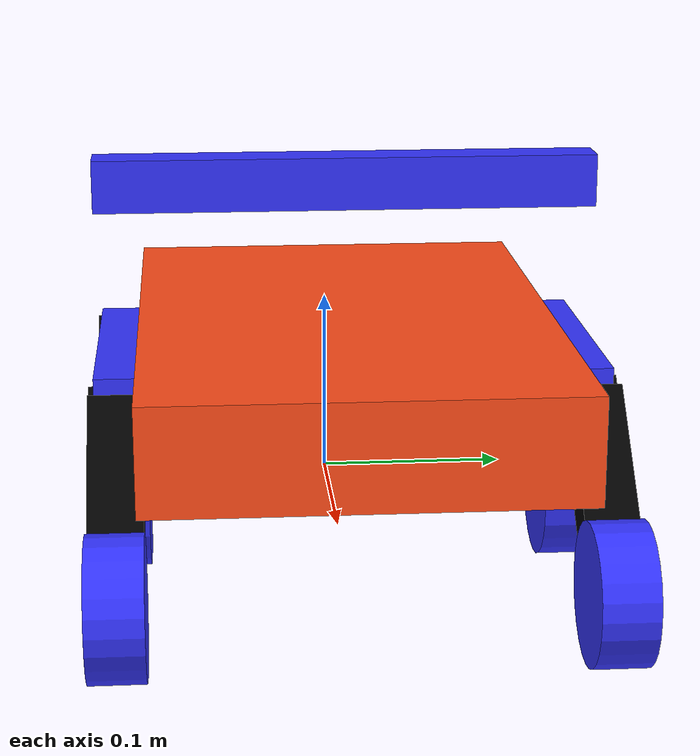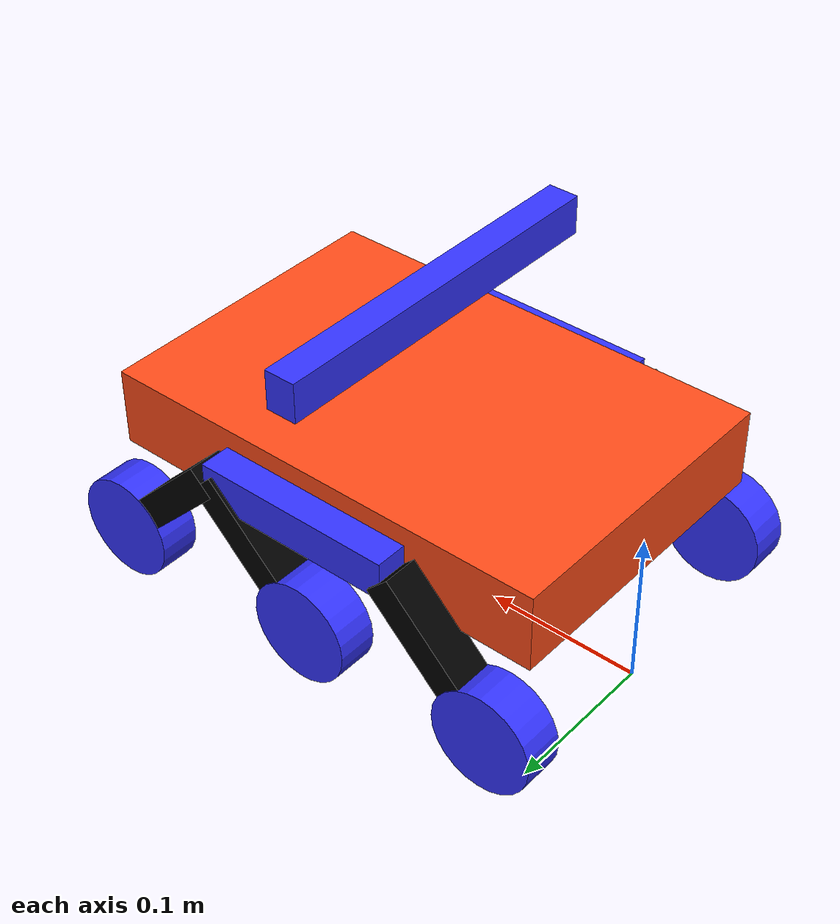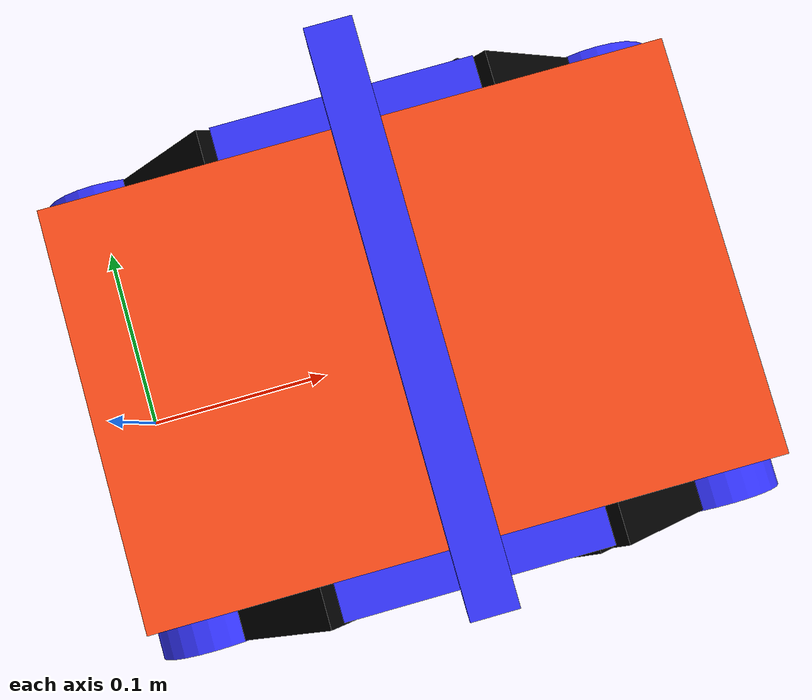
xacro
<?xml version="1.0"?>
<robot xmlns:xacro="http://www.ros.org/wiki/xacro" >

    <xacro:include filename="inertial_macros.xacro"/>

    <xacro:property name="chassis_length" value="0.3"/>
    <xacro:property name="chassis_width" value="0.2"/>
    <xacro:property name="chassis_height" value="0.05"/>
    <xacro:property name="chassis_mass" value="5.0"/>

    <xacro:property name="rocker_length" value="0.13"/>
    <xacro:property name="rocker_width" value="0.02"/>
    <xacro:property name="rocker_height" value="0.2"/>
     <xacro:property name="rocker_mass" value="0.2"/>

    <xacro:property name="tilted_length" value="0.1"/>
    <xacro:property name="tilted_mass" value="0.5"/>
    <xacro:property name="wheel_radius" value="0.033"/>
    <xacro:property name="wheel_thickness" value="0.026"/>
    <xacro:property name="wheel_mass" value="0.05"/>
    <xacro:property name="wheel_offset_x" value="0.226"/>
    <xacro:property name="wheel_offset_y" value="0.1485"/>
    <xacro:property name="wheel_offset_z" value="0.01"/>

    <material name="white">
        <color rgba="1 1 1 1" />
    </material>

    <material name="orange">
        <color rgba="1 0.3 0.1 1"/>
    </material>

    <material name="blue">
        <color rgba="0.2 0.2 1 1"/>
    </material>

    <material name="black">
        <color rgba="0 0 0 1"/>
    </material>

    <material name="red">
        <color rgba="1 0 0 1"/>
    </material>

    <!-- BASE LINK -->

    <link name="base_link">

    </link>

    <!-- CHASSIS LINK -->

    <joint name="chassis_joint" type="fixed">
        <parent link="base_link"/>
        <child link="chassis"/>
        <origin xyz="0 0 0.104"/>
    </joint>

    <link name="chassis">
        <visual>
            <origin xyz="${chassis_length/2} 0 0"/>
            <geometry>
                <box size="${chassis_length} ${chassis_width} ${chassis_height}"/>
            </geometry>
            <material name="orange"/>
        </visual>
        <collision>
            <origin xyz="${chassis_length/2} 0 0"/>
            <geometry>
                <box size="${chassis_length} ${chassis_width} ${chassis_height}"/>
            </geometry>
        </collision>
        <xacro:inertial_box mass="${chassis_mass}" x="${chassis_length}" y="${chassis_width}" z="${chassis_height}">
            <origin xyz="${chassis_length/2} 0 ${chassis_height/2}" rpy="0 0 0"/>
        </xacro:inertial_box>
    </link>

    <gazebo reference="chassis">
        <material>Gazebo/Orange</material>
    </gazebo>

 <!-- DIFFERENTIAL LINK -->
    <joint name="differential_link_joint" type="continuous">
        <parent link="chassis"/>
        <child link="differential_link"/>
        <origin xyz="${chassis_length/2} 0 ${chassis_height+0.04}" rpy="0 0 0" />

    </joint>

    <link name="differential_link">
        <visual>
            <origin xyz="0 0 0" rpy="0 0 ${-pi/2}"/>
            <geometry>
                <box size="${chassis_width+2*rocker_width} ${rocker_width} 0.025"/>
            </geometry>
            <material name="blue"/>
        </visual>
        <collision>
            <origin xyz="0 0 0" rpy="0 0 ${-pi/2}"/>
            <geometry>
                <box size="${chassis_width+2*rocker_width} ${rocker_width} 0.025"/>
            </geometry>
        </collision>
        <xacro:inertial_box mass="${tilted_mass}" x="${tilted_length}" y="${rocker_width}" z="${rocker_height}">
            <origin xyz="${rocker_length/2} 0 ${rocker_height/2}" rpy="0 0 0"/>
        </xacro:inertial_box>
    </link>

    <!-- LEFT WHEEL ROCKER LINK -->
    <joint name="left_wheel_rocker_joint" type="fixed">
        <parent link="differential_link"/>
        <child link="left_rocker"/>
        <origin xyz="0 ${chassis_width/2+rocker_width/2} ${-chassis_height-0.04}" rpy="0 0 ${pi/2}" />

    </joint>

    <link name="left_rocker">
        <visual>
            <origin xyz="0 0 0" rpy="0 0 ${-pi/2}"/>
            <geometry>
                <box size="${rocker_length} ${rocker_width} 0.025"/>
            </geometry>
            <material name="blue"/>
        </visual>
        <collision>
           <origin xyz="0 0 0" rpy="0 0 ${-pi/2}"/>
            <geometry>
                <box size="${rocker_length} ${rocker_width} 0.025"/>
            </geometry>
        </collision>
        <xacro:inertial_box mass="${tilted_mass}" x="${tilted_length}" y="${rocker_width}" z="${rocker_height}">
            <origin xyz="${rocker_length/2} 0 ${rocker_height/2}" rpy="0 0 0"/>
        </xacro:inertial_box>
    </link>

    <!-- TILTED LINK -->
    <joint name="tilted_joint" type="fixed">
        <parent link="left_rocker"/>
        <child link="tilted_link"/>
        <origin xyz="0 ${rocker_length/2} 0" rpy="${pi/4} 0 0" />

    </joint>

    <link name="tilted_link">
        <visual>
            <origin xyz="0 0 -${tilted_length/2}" rpy="0 ${pi/2} 0"/>
            <geometry>
                <box size="${tilted_length} ${rocker_width} 0.025"/>
            </geometry>
            <material name="black"/>
        </visual>
        <collision>
           <origin xyz="0 0 -${tilted_length/2}" rpy="0 ${pi/2} 0"/>
            <geometry>
                <box size="${tilted_length} ${rocker_width} 0.025"/>
            </geometry>
        </collision>
        <xacro:inertial_box mass="${tilted_mass}" x="${tilted_length}" y="${rocker_width}" z="${rocker_height}">
            <origin xyz="${rocker_length/2} 0 ${rocker_height/2}" rpy="0 0 0"/>
        </xacro:inertial_box>
    </link>

    <!-- TILTED LINK2 -->
    <joint name="tilted_two_joint" type="fixed">
        <parent link="left_rocker"/>
        <child link="tilted_two_link"/>
        <origin xyz="0 ${-rocker_length/2} 0" rpy="${-pi/4} 0 0" />

    </joint>

    <link name="tilted_two_link">
        <visual>
            <origin xyz="0 0 -${tilted_length/2}" rpy="0 ${pi/2} 0"/>
            <geometry>
                <box size="${tilted_length} ${rocker_width} 0.025"/>
            </geometry>
            <material name="black"/>
        </visual>
        <collision>
           <origin xyz="0 0 -${tilted_length/2}" rpy="0 ${pi/2} 0"/>
            <geometry>
                <box size="${tilted_length} ${rocker_width} 0.025"/>
            </geometry>
        </collision>
        <xacro:inertial_box mass="${tilted_mass}" x="${tilted_length}" y="${rocker_width}" z="${rocker_height}">
            <origin xyz="${rocker_length/2} 0 ${rocker_height/2}" rpy="0 0 0"/>
        </xacro:inertial_box>
    </link>

    <!-- LEFT WHEEL 1 -->

    <joint name="left_wheel_one_joint" type="continuous">
        <parent link="tilted_two_link"/>
        <child link="left_wheel_one"/>
        <origin xyz="0 0 -${tilted_length}" rpy="0 ${pi/2} 0" />
        <axis xyz="0 0 1"/>
    </joint>

    <link name="left_wheel_one">
        <visual>
            <geometry>
                <cylinder radius="${wheel_radius}" length="${wheel_thickness}"/>
            </geometry>
            <material name="blue"/>
        </visual>
        <collision>
            <geometry>
                <cylinder radius="${wheel_radius}" length="${wheel_thickness}"/>
            </geometry>
        </collision>
        <xacro:inertial_cylinder mass="${wheel_mass}" length="${wheel_thickness}" radius="${wheel_radius}">
            <origin xyz="0 0 0" rpy="0 0 0"/>
        </xacro:inertial_cylinder>
    </link>

    <gazebo reference="left_wheel">
        <material>Gazebo/Blue</material>
    </gazebo>

    <!-- TILTED LINK6 -->
    <joint name="tilted_three_joint" type="fixed">
        <parent link="left_rocker"/>
        <child link="tilted_three_link"/>
        <origin xyz="0 ${-rocker_length/2} 0" rpy="${pi/4} 0 0" />

    </joint>

    <link name="tilted_three_link">
        <visual>
            <origin xyz="0 0 -${tilted_length/2}" rpy="0 ${pi/2} 0"/>
            <geometry>
                <box size="${tilted_length} ${rocker_width} 0.025"/>
            </geometry>
            <material name="black"/>
        </visual>
        <collision>
            <origin xyz="0 0 -${tilted_length/2}" rpy="0 ${pi/2} 0"/>
            <geometry>
                <box size="${tilted_length} ${rocker_width} 0.025"/>
            </geometry>
        </collision>
        <xacro:inertial_box mass="${tilted_mass}" x="${tilted_length}" y="${rocker_width}" z="${rocker_height}">
            <origin xyz="${tilted_length/2} 0 ${rocker_height/2}" rpy="0 0 0"/>
        </xacro:inertial_box>
    </link>

    <!-- LEFT WHEEL 3 -->

    <joint name="left_wheel_three_joint" type="continuous">
        <parent link="tilted_three_link"/>
        <child link="left_wheel_three"/>
        <origin xyz="0 0 ${-tilted_length}" rpy="0 ${pi/2} 0" />
        <axis xyz="0 0 1"/>
    </joint>

    <link name="left_wheel_three">
        <visual>
            <geometry>
                <cylinder radius="${wheel_radius}" length="${wheel_thickness}"/>
            </geometry>
            <material name="blue"/>
        </visual>
        <collision>
            <geometry>
                <cylinder radius="${wheel_radius}" length="${wheel_thickness}"/>
            </geometry>
        </collision>
        <xacro:inertial_cylinder mass="${wheel_mass}" length="${wheel_thickness}" radius="${wheel_radius}">
            <origin xyz="0 0 0" rpy="0 0 0"/>
        </xacro:inertial_cylinder>
    </link>

    <gazebo reference="left_wheel">
        <material>Gazebo/Blue</material>
    </gazebo>

     <!-- LEFT WHEEL 2 -->

    <joint name="left_wheel_two_joint" type="continuous">
        <parent link="tilted_link"/>
        <child link="left_wheel_two"/>
        <origin xyz="0 0 -${tilted_length}" rpy="0 ${pi/2} 0" />
        <axis xyz="0 0 1"/>
    </joint>

    <link name="left_wheel_two">
        <visual>
            <geometry>
                <cylinder radius="${wheel_radius}" length="${wheel_thickness}"/>
            </geometry>
            <material name="blue"/>
        </visual>
        <collision>
            <geometry>
                <cylinder radius="${wheel_radius}" length="${wheel_thickness}"/>
            </geometry>
        </collision>
        <xacro:inertial_cylinder mass="${wheel_mass}" length="${wheel_thickness}" radius="${wheel_radius}">
            <origin xyz="0 0 0" rpy="0 0 0"/>
        </xacro:inertial_cylinder>
    </link>

    <gazebo reference="left_wheel">
        <material>Gazebo/Blue</material>
    </gazebo>

    <!-- RIGHT WHEEL ROCKER LINK -->
    <joint name="right_wheel_rocker_joint" type="continuous">
        <parent link="differential_link"/>
        <child link="right_rocker"/>
        <origin xyz="0 ${-chassis_width/2-rocker_width/2} ${-chassis_height-0.04}" rpy="0 0 ${pi/2}" />

    </joint>

    <link name="right_rocker">
        <visual>
            <origin xyz="0 0 0" rpy="0 0 ${-pi/2}"/>
            <geometry>
                <box size="${rocker_length} ${rocker_width} 0.025"/>
            </geometry>
            <material name="blue"/>
        </visual>
        <collision>
            <origin xyz="0 0 0" rpy="0 0 ${-pi/2}"/>
            <geometry>
                <box size="${rocker_length} ${rocker_width} 0.025"/>
            </geometry>
        </collision>
        <xacro:inertial_box mass="${rocker_mass}" x="${rocker_length}" y="${rocker_width}" z="${rocker_height}">
            <origin xyz="${rocker_length/2} 0 ${rocker_height/2}" rpy="0 0 0"/>
        </xacro:inertial_box>
    </link>

    <!-- TILTED LINK 1-->
    <joint name="tilted_joint_two" type="fixed">
        <parent link="right_rocker"/>
        <child link="tilted_link_two"/>
        <origin xyz="0 ${rocker_length/2} 0" rpy="${pi/4} 0 0" />

    </joint>

    <link name="tilted_link_two">
        <visual>
            <origin xyz="0 0 -${tilted_length/2}" rpy="0 ${pi/2} 0"/>
            <geometry>
                <box size="${tilted_length} ${rocker_width} 0.025"/>
            </geometry>
            <material name="black"/>
        </visual>
        <collision>
           <origin xyz="0 0 -${tilted_length/2}" rpy="0 ${pi/2} 0"/>
            <geometry>
                <box size="${tilted_length} ${rocker_width} 0.025"/>
            </geometry>
        </collision>
        <xacro:inertial_box mass="${rocker_mass}" x="${rocker_length}" y="${rocker_width}" z="${rocker_height}">
            <origin xyz="${rocker_length/2} 0 ${rocker_height/2}" rpy="0 0 0"/>
        </xacro:inertial_box>
    </link>

    <!-- TILTED LINK2 -->
    <joint name="tilted_two_joint_two" type="fixed">
        <parent link="right_rocker"/>
        <child link="tilted_two_link_two"/>
        <origin xyz="0 ${-rocker_length/2} 0" rpy="${-pi/4} 0 0" />

    </joint>

    <link name="tilted_two_link_two">
        <visual>
            <origin xyz="0 0 -${tilted_length/2}" rpy="0 ${pi/2} 0"/>
            <geometry>
                <box size="${tilted_length} ${rocker_width} 0.025"/>
            </geometry>
            <material name="black"/>
        </visual>
        <collision>
           <origin xyz="0 0 -${tilted_length/2}" rpy="0 ${pi/2} 0"/>
            <geometry>
                <box size="${tilted_length} ${rocker_width} 0.025"/>
            </geometry>
        </collision>
        <xacro:inertial_box mass="${rocker_mass}" x="${rocker_length}" y="${rocker_width}" z="${rocker_height}">
            <origin xyz="${rocker_length/2} 0 ${rocker_height/2}" rpy="0 0 0"/>
        </xacro:inertial_box>
    </link>

    <!-- RIGHT WHEEL 1 -->

    <joint name="right_wheel_one_joint" type="continuous">
        <parent link="tilted_two_link_two"/>
        <child link="right_wheel_one"/>
        <origin xyz="0 0 ${-tilted_length}" rpy="0 ${pi/2} 0" />
        <axis xyz="0 0 1"/>
    </joint>

    <link name="right_wheel_one">
        <visual>
            <geometry>
                <cylinder radius="${wheel_radius}" length="${wheel_thickness}"/>
            </geometry>
            <material name="blue"/>
        </visual>
        <collision>
            <geometry>
                <cylinder radius="${wheel_radius}" length="${wheel_thickness}"/>
            </geometry>
        </collision>
        <xacro:inertial_cylinder mass="${wheel_mass}" length="${wheel_thickness}" radius="${wheel_radius}">
            <origin xyz="0 0 0" rpy="0 0 0"/>
        </xacro:inertial_cylinder>
    </link>

    <gazebo reference="right_wheel">
        <material>Gazebo/Blue</material>
    </gazebo>

    <!-- TILTED LINK3 -->
     <joint name="tilted_two_joint_three" type="fixed">
        <parent link="right_rocker"/>
        <child link="tilted_two_link_three"/>
        <origin xyz="0 ${-rocker_length/2} 0" rpy="${pi/4} 0 0" />

    </joint>
    <link name="tilted_two_link_three">
        <visual>
            <origin xyz="0 0 -${tilted_length/2}" rpy="0 ${pi/2} 0"/>
            <geometry>
                <box size="${tilted_length} ${rocker_width} 0.025"/>
            </geometry>
            <material name="black"/>
        </visual>
        <collision>
             <origin xyz="0 0 -${tilted_length/2}" rpy="0 ${pi/2} 0"/>
            <geometry>
                <box size="${tilted_length} ${rocker_width} 0.025"/>
            </geometry>
        </collision>
        <xacro:inertial_box mass="${rocker_mass}" x="${rocker_length}" y="${rocker_width}" z="${rocker_height}">
            <origin xyz="${rocker_length/2} 0 ${rocker_height/2}" rpy="0 0 0"/>
        </xacro:inertial_box>
    </link>

    <!-- RIGHT WHEEL 3 -->

    <joint name="right_wheel_three_joint" type="continuous">
        <parent link="tilted_two_link_three"/>
        <child link="right_wheel_three"/>
        <origin xyz="0 0 ${-tilted_length}" rpy="0 ${pi/2} 0" />
        <axis xyz="0 0 1"/>
    </joint>

    <link name="right_wheel_three">
        <visual>
            <geometry>
                <cylinder radius="${wheel_radius}" length="${wheel_thickness}"/>
            </geometry>
            <material name="blue"/>
        </visual>
        <collision>
            <geometry>
                <cylinder radius="${wheel_radius}" length="${wheel_thickness}"/>
            </geometry>
        </collision>
        <xacro:inertial_cylinder mass="${wheel_mass}" length="${wheel_thickness}" radius="${wheel_radius}">
            <origin xyz="0 0 0" rpy="0 0 0"/>
        </xacro:inertial_cylinder>
    </link>

    <gazebo reference="right_wheel">
        <material>Gazebo/Blue</material>
    </gazebo>

     <!-- RIGHT WHEEL 2 -->

    <joint name="right_wheel_two_joint" type="continuous">
        <parent link="tilted_link_two"/>
        <child link="right_wheel_two"/>
        <origin xyz="0 0 ${-tilted_length}" rpy="0 ${pi/2} 0" />
        <axis xyz="0 0 1"/>
    </joint>

    <link name="right_wheel_two">
        <visual>
            <geometry>
                <cylinder radius="${wheel_radius}" length="${wheel_thickness}"/>
            </geometry>
            <material name="blue"/>
        </visual>
        <collision>
             <geometry>
                <cylinder radius="${wheel_radius}" length="${wheel_thickness}"/>
            </geometry>
        </collision>
        <xacro:inertial_cylinder mass="${wheel_mass}" length="${wheel_thickness}" radius="${wheel_radius}">
            <origin xyz="0 0 0" rpy="0 0 0"/>
        </xacro:inertial_cylinder>
    </link>

    <gazebo reference="right_wheel">
        <material>Gazebo/Blue</material>
    </gazebo>

</robot>
